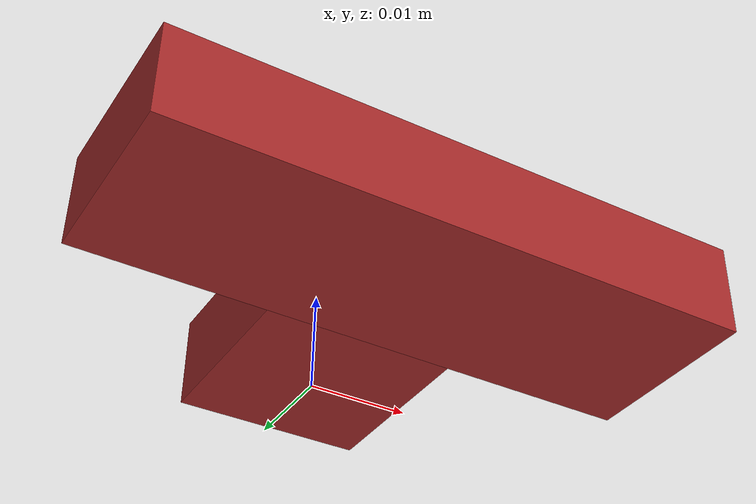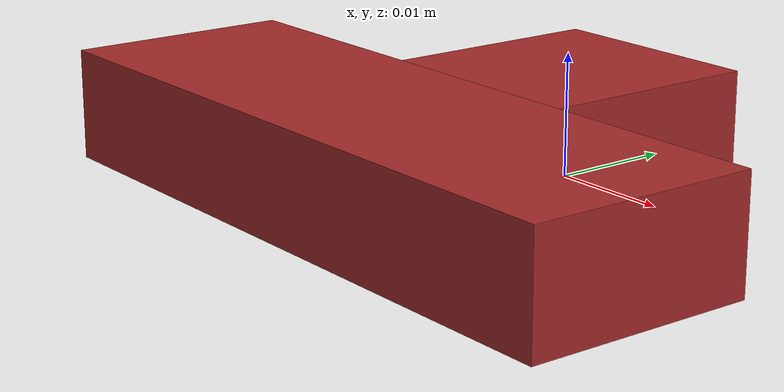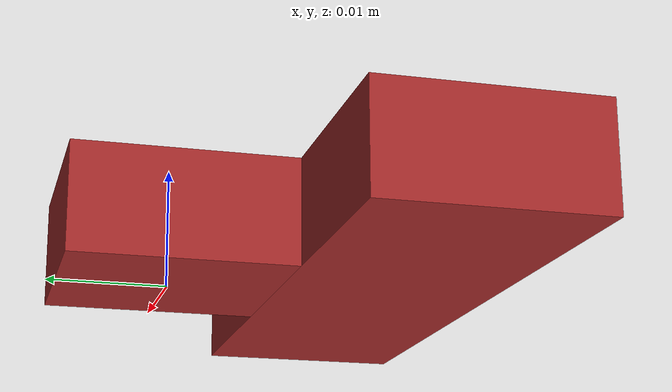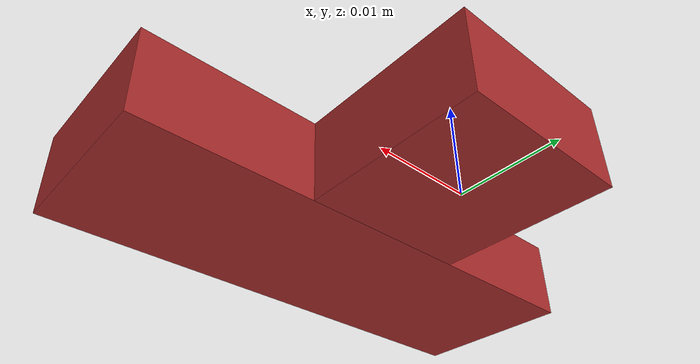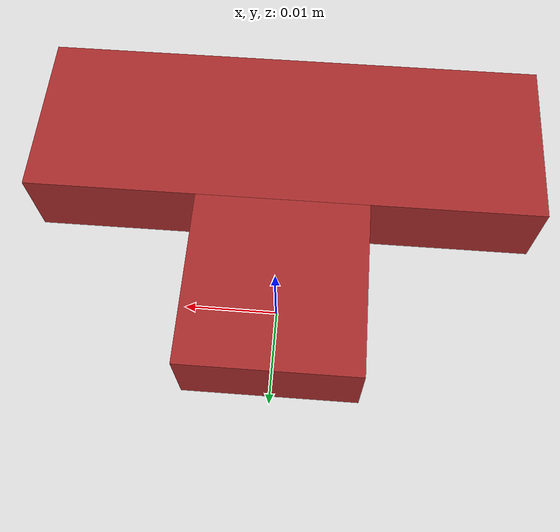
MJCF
<mujoco>
  <compiler angle="radian" autolimits="true"/>
  <worldbody>
    <geom type="box" size="0.00925 0.00925 0.0045" pos="0 0 0.0045" rgba="0.647 0.165 0.165 1" density="1000"/>
    <geom type="box" size="0.02775 0.00925 0.0045" pos="0 -0.0185 0.0045" rgba="0.647 0.165 0.165 1" density="1000"/>
  </worldbody>
</mujoco>
